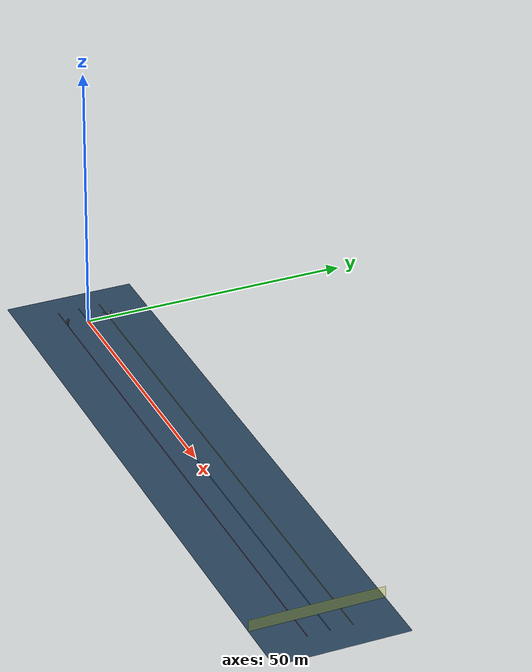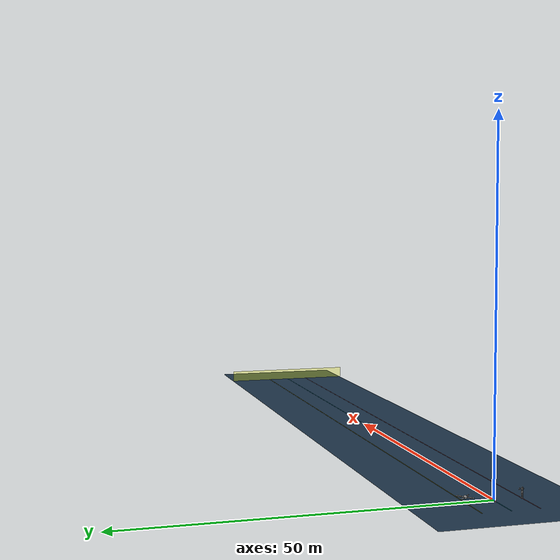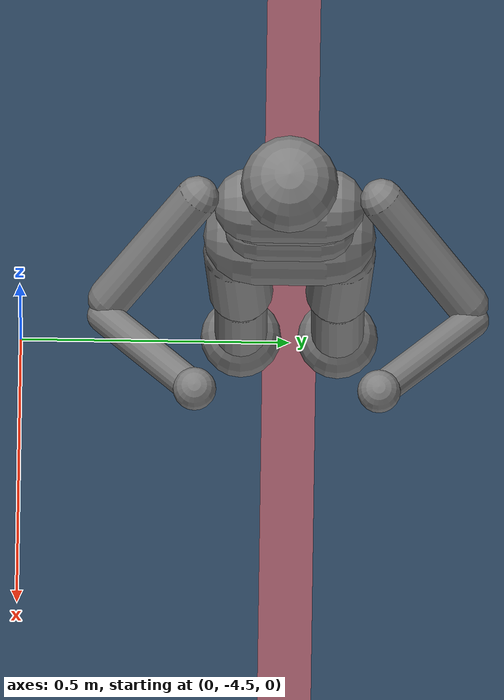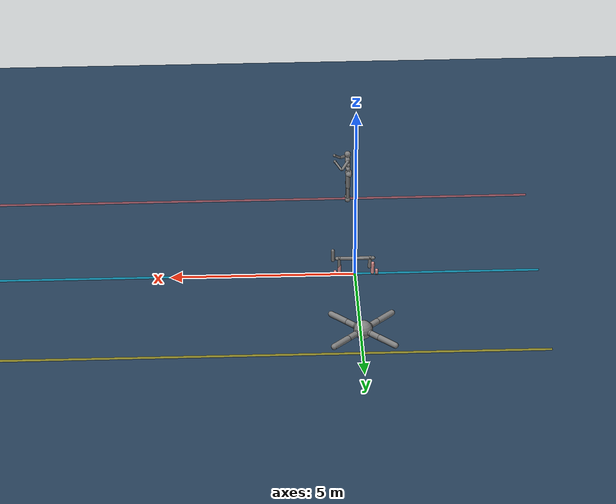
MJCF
<mujoco model="ai_olympics">
  <compiler angle="degree" inertiafromgeom="true" coordinate="local" />
  <option timestep="0.01" integrator="RK4" gravity="0 0 -9.81" />
  <visual>
    <global offwidth="640" offheight="480" />
  </visual>
  <asset>
    <texture builtin="gradient" height="100" rgb1="1 1 1" rgb2="0 0 0" type="skybox" width="100" />
    <texture builtin="flat" height="1278" mark="cross" markrgb="1 1 1" name="ant/texgeom" random="0.01" rgb1="0.8 0.6 0.4" rgb2="0.8 0.6 0.4" type="cube" width="127" />
    <texture builtin="checker" height="100" name="ant/texplane" rgb1="0 0 0" rgb2="0.8 0.8 0.8" type="2d" width="100" />
    <material name="ant/MatPlane" reflectance="0.5" shininess="1" specular="1" texrepeat="60 60" texture="ant/texplane" />
    <material name="ant/geom" texture="ant/texgeom" texuniform="true" />
    <texture builtin="gradient" height="100" rgb1="1 1 1" rgb2="0 0 0" type="skybox" width="100" />
    <texture builtin="flat" height="1278" mark="cross" markrgb="1 1 1" name="cheetah/texgeom" random="0.01" rgb1="0.8 0.6 0.4" rgb2="0.8 0.6 0.4" type="cube" width="127" />
    <texture builtin="checker" height="100" name="cheetah/texplane" rgb1="0 0 0" rgb2="0.8 0.8 0.8" type="2d" width="100" />
    <material name="cheetah/MatPlane" reflectance="0.5" shininess="1" specular="1" texrepeat="60 60" texture="cheetah/texplane" />
    <material name="cheetah/geom" texture="cheetah/texgeom" texuniform="true" />
    <texture builtin="gradient" height="100" rgb1=".4 .5 .6" rgb2="0 0 0" type="skybox" width="100" />
    <texture builtin="flat" height="1278" mark="cross" markrgb="1 1 1" name="humanoid/texgeom" random="0.01" rgb1="0.8 0.6 0.4" rgb2="0.8 0.6 0.4" type="cube" width="127" />
    <texture builtin="checker" height="100" name="humanoid/texplane" rgb1="0 0 0" rgb2="0.8 0.8 0.8" type="2d" width="100" />
    <material name="humanoid/MatPlane" reflectance="0.5" shininess="1" specular="1" texrepeat="60 60" texture="humanoid/texplane" />
    <material name="humanoid/geom" texture="humanoid/texgeom" texuniform="true" />
  </asset>
  <default>
    <default class="ant">
      <joint armature="1" damping="1" limited="true" />
      <geom conaffinity="0" condim="3" density="5.0" friction="1 0.5 0.5" margin="0.01" rgba="0.8 0.6 0.4 1" />
    </default>
    <default class="cheetah">
      <joint armature=".1" damping=".01" limited="true" solimplimit="0 .8 .03" solreflimit=".02 1" stiffness="8" />
      <geom conaffinity="0" condim="3" contype="1" friction=".4 .1 .1" rgba="0.8 0.6 .4 1" solimp="0.0 0.8 0.01" solref="0.02 1" />
      <motor ctrllimited="true" ctrlrange="-1 1" />
    </default>
    <default class="humanoid">
      <joint armature="1" damping="1" limited="true" />
      <geom conaffinity="1" condim="1" contype="1" margin="0.001" material="humanoid/geom" rgba="0.8 0.6 .4 1" />
      <motor ctrllimited="true" ctrlrange="-.4 .4" />
    </default>
  </default>
  <worldbody>
    <light directional="true" diffuse=".8 .8 .8" specular=".2 .2 .2" pos="50 0 10" dir="0 0 -1" />
    <geom name="main_floor" type="plane" pos="50 0 0" size="60 12 0.1" rgba="0.15 0.25 0.35 1" condim="3" />
    <geom type="box" pos="50 4 0.015" size="55 0.05 0.005" rgba="1 0.85 0 0.5" contype="0" conaffinity="0" />
    <geom type="box" pos="50 0 0.015" size="55 0.05 0.005" rgba="0 0.85 1 0.5" contype="0" conaffinity="0" />
    <geom type="box" pos="50 -4 0.015" size="55 0.05 0.005" rgba="1 0.4 0.4 0.5" contype="0" conaffinity="0" />
    <geom type="box" pos="100.0 0 1" size="0.1 12 1" rgba="1 1 0 0.3" contype="0" conaffinity="0" />
    <camera name="track" pos="0 -20 8" xyaxes="1 0 0 0 1 3" mode="trackcom" />
    <light cutoff="100" diffuse="1 1 1" dir="-0 0 -1.3" directional="true" exponent="1" pos="0  4    0.75" specular=".1 .1 .1" />
    <geom conaffinity="1" condim="3" material="ant/MatPlane" name="ant/floor" pos="0  4    0.75" rgba="0.8 0.9 0.8 1" size="40 40 40" type="plane" />
    <body name="ant/torso" pos="0  4    0.75">
      <camera name="ant/track" mode="trackcom" pos="0 -3 0.3" xyaxes="1 0 0 0 0 1" />
      <geom name="ant/torso_geom" pos="0 0 0" size="0.25" type="sphere" />
      <joint armature="0" damping="0" limited="false" margin="0.01" name="ant/root" pos="0 0 0" type="free" />
      <body name="ant/front_left_leg" pos="0 0 0">
        <geom fromto="0.0 0.0 0.0 0.2 0.2 0.0" name="ant/aux_1_geom" size="0.08" type="capsule" />
        <body name="ant/aux_1" pos="0.2 0.2 0">
          <joint axis="0 0 1" name="ant/hip_1" pos="0.0 0.0 0.0" range="-30 30" type="hinge" />
          <geom fromto="0.0 0.0 0.0 0.2 0.2 0.0" name="ant/left_leg_geom" size="0.08" type="capsule" />
          <body pos="0.2 0.2 0">
            <joint axis="-1 1 0" name="ant/ankle_1" pos="0.0 0.0 0.0" range="30 70" type="hinge" />
            <geom fromto="0.0 0.0 0.0 0.4 0.4 0.0" name="ant/left_ankle_geom" size="0.08" type="capsule" />
          </body>
        </body>
      </body>
      <body name="ant/front_right_leg" pos="0 0 0">
        <geom fromto="0.0 0.0 0.0 -0.2 0.2 0.0" name="ant/aux_2_geom" size="0.08" type="capsule" />
        <body name="ant/aux_2" pos="-0.2 0.2 0">
          <joint axis="0 0 1" name="ant/hip_2" pos="0.0 0.0 0.0" range="-30 30" type="hinge" />
          <geom fromto="0.0 0.0 0.0 -0.2 0.2 0.0" name="ant/right_leg_geom" size="0.08" type="capsule" />
          <body pos="-0.2 0.2 0">
            <joint axis="1 1 0" name="ant/ankle_2" pos="0.0 0.0 0.0" range="-70 -30" type="hinge" />
            <geom fromto="0.0 0.0 0.0 -0.4 0.4 0.0" name="ant/right_ankle_geom" size="0.08" type="capsule" />
          </body>
        </body>
      </body>
      <body name="ant/back_leg" pos="0 0 0">
        <geom fromto="0.0 0.0 0.0 -0.2 -0.2 0.0" name="ant/aux_3_geom" size="0.08" type="capsule" />
        <body name="ant/aux_3" pos="-0.2 -0.2 0">
          <joint axis="0 0 1" name="ant/hip_3" pos="0.0 0.0 0.0" range="-30 30" type="hinge" />
          <geom fromto="0.0 0.0 0.0 -0.2 -0.2 0.0" name="ant/back_leg_geom" size="0.08" type="capsule" />
          <body pos="-0.2 -0.2 0">
            <joint axis="-1 1 0" name="ant/ankle_3" pos="0.0 0.0 0.0" range="-70 -30" type="hinge" />
            <geom fromto="0.0 0.0 0.0 -0.4 -0.4 0.0" name="ant/third_ankle_geom" size="0.08" type="capsule" />
          </body>
        </body>
      </body>
      <body name="ant/right_back_leg" pos="0 0 0">
        <geom fromto="0.0 0.0 0.0 0.2 -0.2 0.0" name="ant/aux_4_geom" size="0.08" type="capsule" />
        <body name="ant/aux_4" pos="0.2 -0.2 0">
          <joint axis="0 0 1" name="ant/hip_4" pos="0.0 0.0 0.0" range="-30 30" type="hinge" />
          <geom fromto="0.0 0.0 0.0 0.2 -0.2 0.0" name="ant/rightback_leg_geom" size="0.08" type="capsule" />
          <body pos="0.2 -0.2 0">
            <joint axis="1 1 0" name="ant/ankle_4" pos="0.0 0.0 0.0" range="30 70" type="hinge" />
            <geom fromto="0.0 0.0 0.0 0.4 -0.4 0.0" name="ant/fourth_ankle_geom" size="0.08" type="capsule" />
          </body>
        </body>
      </body>
    </body>
    <light cutoff="100" diffuse="1 1 1" dir="-0 0 -1.3" directional="true" exponent="1" pos="0  0    0.5" specular=".1 .1 .1" />
    <geom conaffinity="1" condim="3" material="cheetah/MatPlane" name="cheetah/floor" pos="0  0    0.5" rgba="0.8 0.9 0.8 1" size="40 40 40" type="plane" />
    <body name="cheetah/torso" pos="0  0    0.5">
      <camera name="cheetah/track" mode="trackcom" pos="0 -3 0.3" xyaxes="1 0 0 0 0 1" />
      <joint armature="0" axis="1 0 0" damping="0" limited="false" name="cheetah/rootx" pos="0 0 0" stiffness="0" type="slide" />
      <joint armature="0" axis="0 0 1" damping="0" limited="false" name="cheetah/rootz" pos="0 0 0" stiffness="0" type="slide" />
      <joint armature="0" axis="0 1 0" damping="0" limited="false" name="cheetah/rooty" pos="0 0 0" stiffness="0" type="hinge" />
      <geom fromto="-.5 0 0 .5 0 0" name="cheetah/torso" size="0.046" type="capsule" />
      <geom axisangle="0 1 0 .87" name="cheetah/head" pos=".6 0 .1" size="0.046 .15" type="capsule" />
      <body name="cheetah/bthigh" pos="-.5 0 0">
        <joint axis="0 1 0" damping="6" name="cheetah/bthigh" pos="0 0 0" range="-.52 1.05" stiffness="240" type="hinge" />
        <geom axisangle="0 1 0 -3.8" name="cheetah/bthigh" pos=".1 0 -.13" size="0.046 .145" type="capsule" />
        <body name="cheetah/bshin" pos=".16 0 -.25">
          <joint axis="0 1 0" damping="4.5" name="cheetah/bshin" pos="0 0 0" range="-.785 .785" stiffness="180" type="hinge" />
          <geom axisangle="0 1 0 -2.03" name="cheetah/bshin" pos="-.14 0 -.07" rgba="0.9 0.6 0.6 1" size="0.046 .15" type="capsule" />
          <body name="cheetah/bfoot" pos="-.28 0 -.14">
            <joint axis="0 1 0" damping="3" name="cheetah/bfoot" pos="0 0 0" range="-.4 .785" stiffness="120" type="hinge" />
            <geom axisangle="0 1 0 -.27" name="cheetah/bfoot" pos=".03 0 -.097" rgba="0.9 0.6 0.6 1" size="0.046 .094" type="capsule" />
          </body>
        </body>
      </body>
      <body name="cheetah/fthigh" pos=".5 0 0">
        <joint axis="0 1 0" damping="4.5" name="cheetah/fthigh" pos="0 0 0" range="-1 .7" stiffness="180" type="hinge" />
        <geom axisangle="0 1 0 .52" name="cheetah/fthigh" pos="-.07 0 -.12" size="0.046 .133" type="capsule" />
        <body name="cheetah/fshin" pos="-.14 0 -.24">
          <joint axis="0 1 0" damping="3" name="cheetah/fshin" pos="0 0 0" range="-1.2 .87" stiffness="120" type="hinge" />
          <geom axisangle="0 1 0 -.6" name="cheetah/fshin" pos=".065 0 -.09" rgba="0.9 0.6 0.6 1" size="0.046 .106" type="capsule" />
          <body name="cheetah/ffoot" pos=".13 0 -.18">
            <joint axis="0 1 0" damping="1.5" name="cheetah/ffoot" pos="0 0 0" range="-.5 .5" stiffness="60" type="hinge" />
            <geom axisangle="0 1 0 -.6" name="cheetah/ffoot" pos=".045 0 -.07" rgba="0.9 0.6 0.6 1" size="0.046 .07" type="capsule" />
          </body>
        </body>
      </body>
    </body>
    <light cutoff="100" diffuse="1 1 1" dir="-0 0 -1.3" directional="true" exponent="1" pos="0 -4    1.25" specular=".1 .1 .1" />
    <geom condim="3" friction="1 .1 .1" material="humanoid/MatPlane" name="humanoid/floor" pos="0 -4    1.25" rgba="0.8 0.9 0.8 1" size="20 20 0.125" type="plane" />
    <body name="humanoid/torso" pos="0 -4    1.25">
      <camera name="humanoid/track" mode="trackcom" pos="0 -4 0" xyaxes="1 0 0 0 0 1" />
      <joint armature="0" damping="0" limited="false" name="humanoid/root" pos="0 0 0" stiffness="0" type="free" />
      <geom fromto="0 -.07 0 0 .07 0" name="humanoid/torso1" size="0.07" type="capsule" />
      <geom name="humanoid/head" pos="0 0 .19" size=".09" type="sphere" user="258" />
      <geom fromto="-.01 -.06 -.12 -.01 .06 -.12" name="humanoid/uwaist" size="0.06" type="capsule" />
      <body name="humanoid/lwaist" pos="-.01 0 -0.260" quat="1.000 0 -0.002 0">
        <geom fromto="0 -.06 0 0 .06 0" name="humanoid/lwaist" size="0.06" type="capsule" />
        <joint armature="0.02" axis="0 0 1" damping="5" name="humanoid/abdomen_z" pos="0 0 0.065" range="-45 45" stiffness="20" type="hinge" />
        <joint armature="0.02" axis="0 1 0" damping="5" name="humanoid/abdomen_y" pos="0 0 0.065" range="-75 30" stiffness="10" type="hinge" />
        <body name="humanoid/pelvis" pos="0 0 -0.165" quat="1.000 0 -0.002 0">
          <joint armature="0.02" axis="1 0 0" damping="5" name="humanoid/abdomen_x" pos="0 0 0.1" range="-35 35" stiffness="10" type="hinge" />
          <geom fromto="-.02 -.07 0 -.02 .07 0" name="humanoid/butt" size="0.09" type="capsule" />
          <body name="humanoid/right_thigh" pos="0 -0.1 -0.04">
            <joint armature="0.01" axis="1 0 0" damping="5" name="humanoid/right_hip_x" pos="0 0 0" range="-25 5" stiffness="10" type="hinge" />
            <joint armature="0.01" axis="0 0 1" damping="5" name="humanoid/right_hip_z" pos="0 0 0" range="-60 35" stiffness="10" type="hinge" />
            <joint armature="0.0080" axis="0 1 0" damping="5" name="humanoid/right_hip_y" pos="0 0 0" range="-110 20" stiffness="20" type="hinge" />
            <geom fromto="0 0 0 0 0.01 -.34" name="humanoid/right_thigh1" size="0.06" type="capsule" />
            <body name="humanoid/right_shin" pos="0 0.01 -0.403">
              <joint armature="0.0060" axis="0 -1 0" name="humanoid/right_knee" pos="0 0 .02" range="-160 -2" type="hinge" />
              <geom fromto="0 0 0 0 0 -.3" name="humanoid/right_shin1" size="0.049" type="capsule" />
              <body name="humanoid/right_foot" pos="0 0 -0.45">
                <geom name="humanoid/right_foot" pos="0 0 0.1" size="0.075" type="sphere" user="0" />
              </body>
            </body>
          </body>
          <body name="humanoid/left_thigh" pos="0 0.1 -0.04">
            <joint armature="0.01" axis="-1 0 0" damping="5" name="humanoid/left_hip_x" pos="0 0 0" range="-25 5" stiffness="10" type="hinge" />
            <joint armature="0.01" axis="0 0 -1" damping="5" name="humanoid/left_hip_z" pos="0 0 0" range="-60 35" stiffness="10" type="hinge" />
            <joint armature="0.01" axis="0 1 0" damping="5" name="humanoid/left_hip_y" pos="0 0 0" range="-110 20" stiffness="20" type="hinge" />
            <geom fromto="0 0 0 0 -0.01 -.34" name="humanoid/left_thigh1" size="0.06" type="capsule" />
            <body name="humanoid/left_shin" pos="0 -0.01 -0.403">
              <joint armature="0.0060" axis="0 -1 0" name="humanoid/left_knee" pos="0 0 .02" range="-160 -2" stiffness="1" type="hinge" />
              <geom fromto="0 0 0 0 0 -.3" name="humanoid/left_shin1" size="0.049" type="capsule" />
              <body name="humanoid/left_foot" pos="0 0 -0.45">
                <geom name="humanoid/left_foot" type="sphere" size="0.075" pos="0 0 0.1" user="0" />
              </body>
            </body>
          </body>
        </body>
      </body>
      <body name="humanoid/right_upper_arm" pos="0 -0.17 0.06">
        <joint armature="0.0068" axis="2 1 1" name="humanoid/right_shoulder1" pos="0 0 0" range="-85 60" stiffness="1" type="hinge" />
        <joint armature="0.0051" axis="0 -1 1" name="humanoid/right_shoulder2" pos="0 0 0" range="-85 60" stiffness="1" type="hinge" />
        <geom fromto="0 0 0 .16 -.16 -.16" name="humanoid/right_uarm1" size="0.04 0.16" type="capsule" />
        <body name="humanoid/right_lower_arm" pos=".18 -.18 -.18">
          <joint armature="0.0028" axis="0 -1 1" name="humanoid/right_elbow" pos="0 0 0" range="-90 50" stiffness="0" type="hinge" />
          <geom fromto="0.01 0.01 0.01 .17 .17 .17" name="humanoid/right_larm" size="0.031" type="capsule" />
          <geom name="humanoid/right_hand" pos=".18 .18 .18" size="0.04" type="sphere" />
          <camera pos="0 0 0" />
        </body>
      </body>
      <body name="humanoid/left_upper_arm" pos="0 0.17 0.06">
        <joint armature="0.0068" axis="2 -1 1" name="humanoid/left_shoulder1" pos="0 0 0" range="-60 85" stiffness="1" type="hinge" />
        <joint armature="0.0051" axis="0 1 1" name="humanoid/left_shoulder2" pos="0 0 0" range="-60 85" stiffness="1" type="hinge" />
        <geom fromto="0 0 0 .16 .16 -.16" name="humanoid/left_uarm1" size="0.04 0.16" type="capsule" />
        <body name="humanoid/left_lower_arm" pos=".18 .18 -.18">
          <joint armature="0.0028" axis="0 -1 -1" name="humanoid/left_elbow" pos="0 0 0" range="-90 50" stiffness="0" type="hinge" />
          <geom fromto="0.01 -0.01 0.01 .17 -.17 .17" name="humanoid/left_larm" size="0.031" type="capsule" />
          <geom name="humanoid/left_hand" pos=".18 -.18 .18" size="0.04" type="sphere" />
        </body>
      </body>
    </body>
  </worldbody>
  <contact />
  <equality />
  <tendon>
    <fixed name="humanoid/left_hipknee">
      <joint coef="-1" joint="humanoid/left_hip_y" />
      <joint coef="1" joint="humanoid/left_knee" />
    </fixed>
    <fixed name="humanoid/right_hipknee">
      <joint coef="-1" joint="humanoid/right_hip_y" />
      <joint coef="1" joint="humanoid/right_knee" />
    </fixed>
  </tendon>
  <actuator>
    <motor ctrllimited="true" ctrlrange="-1.0 1.0" joint="ant/hip_4" gear="150" />
    <motor ctrllimited="true" ctrlrange="-1.0 1.0" joint="ant/ankle_4" gear="150" />
    <motor ctrllimited="true" ctrlrange="-1.0 1.0" joint="ant/hip_1" gear="150" />
    <motor ctrllimited="true" ctrlrange="-1.0 1.0" joint="ant/ankle_1" gear="150" />
    <motor ctrllimited="true" ctrlrange="-1.0 1.0" joint="ant/hip_2" gear="150" />
    <motor ctrllimited="true" ctrlrange="-1.0 1.0" joint="ant/ankle_2" gear="150" />
    <motor ctrllimited="true" ctrlrange="-1.0 1.0" joint="ant/hip_3" gear="150" />
    <motor ctrllimited="true" ctrlrange="-1.0 1.0" joint="ant/ankle_3" gear="150" />
    <motor gear="120" joint="cheetah/bthigh" name="cheetah/bthigh" />
    <motor gear="90" joint="cheetah/bshin" name="cheetah/bshin" />
    <motor gear="60" joint="cheetah/bfoot" name="cheetah/bfoot" />
    <motor gear="120" joint="cheetah/fthigh" name="cheetah/fthigh" />
    <motor gear="60" joint="cheetah/fshin" name="cheetah/fshin" />
    <motor gear="30" joint="cheetah/ffoot" name="cheetah/ffoot" />
    <motor gear="100" joint="humanoid/abdomen_y" name="humanoid/abdomen_y" />
    <motor gear="100" joint="humanoid/abdomen_z" name="humanoid/abdomen_z" />
    <motor gear="100" joint="humanoid/abdomen_x" name="humanoid/abdomen_x" />
    <motor gear="100" joint="humanoid/right_hip_x" name="humanoid/right_hip_x" />
    <motor gear="100" joint="humanoid/right_hip_z" name="humanoid/right_hip_z" />
    <motor gear="300" joint="humanoid/right_hip_y" name="humanoid/right_hip_y" />
    <motor gear="200" joint="humanoid/right_knee" name="humanoid/right_knee" />
    <motor gear="100" joint="humanoid/left_hip_x" name="humanoid/left_hip_x" />
    <motor gear="100" joint="humanoid/left_hip_z" name="humanoid/left_hip_z" />
    <motor gear="300" joint="humanoid/left_hip_y" name="humanoid/left_hip_y" />
    <motor gear="200" joint="humanoid/left_knee" name="humanoid/left_knee" />
    <motor gear="25" joint="humanoid/right_shoulder1" name="humanoid/right_shoulder1" />
    <motor gear="25" joint="humanoid/right_shoulder2" name="humanoid/right_shoulder2" />
    <motor gear="25" joint="humanoid/right_elbow" name="humanoid/right_elbow" />
    <motor gear="25" joint="humanoid/left_shoulder1" name="humanoid/left_shoulder1" />
    <motor gear="25" joint="humanoid/left_shoulder2" name="humanoid/left_shoulder2" />
    <motor gear="25" joint="humanoid/left_elbow" name="humanoid/left_elbow" />
  </actuator>
</mujoco>
